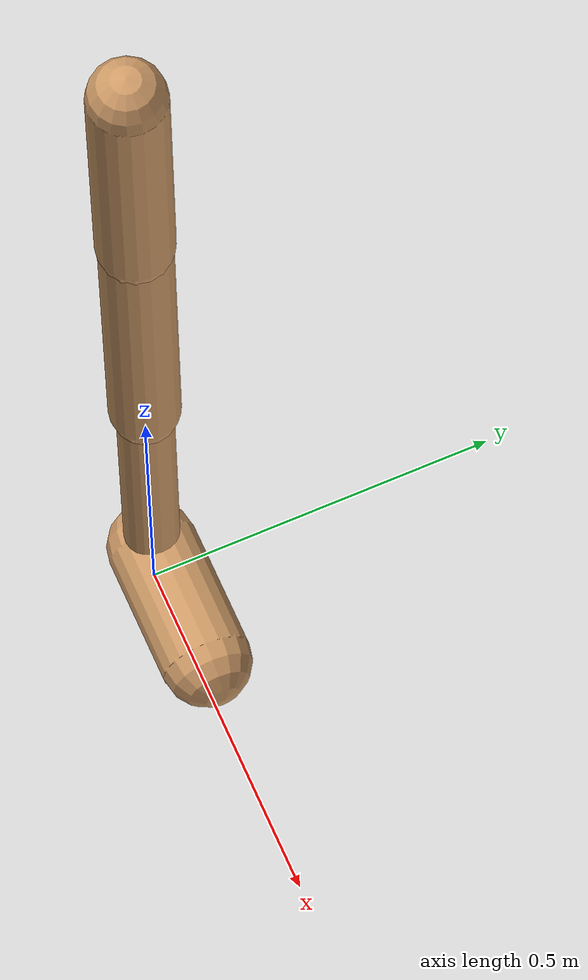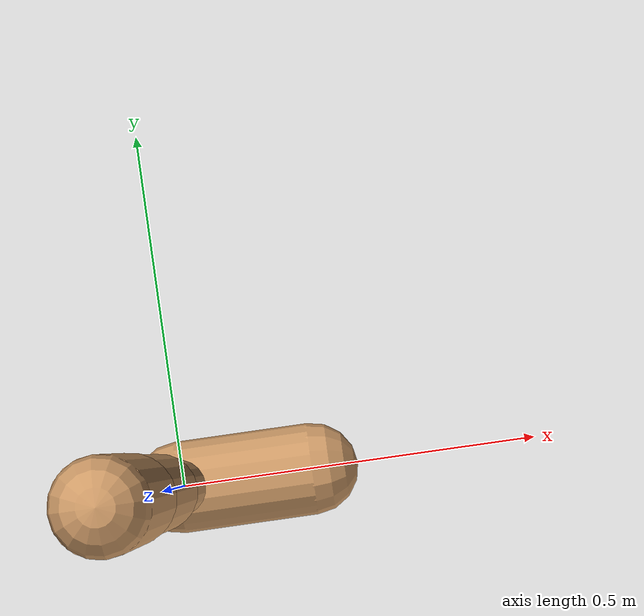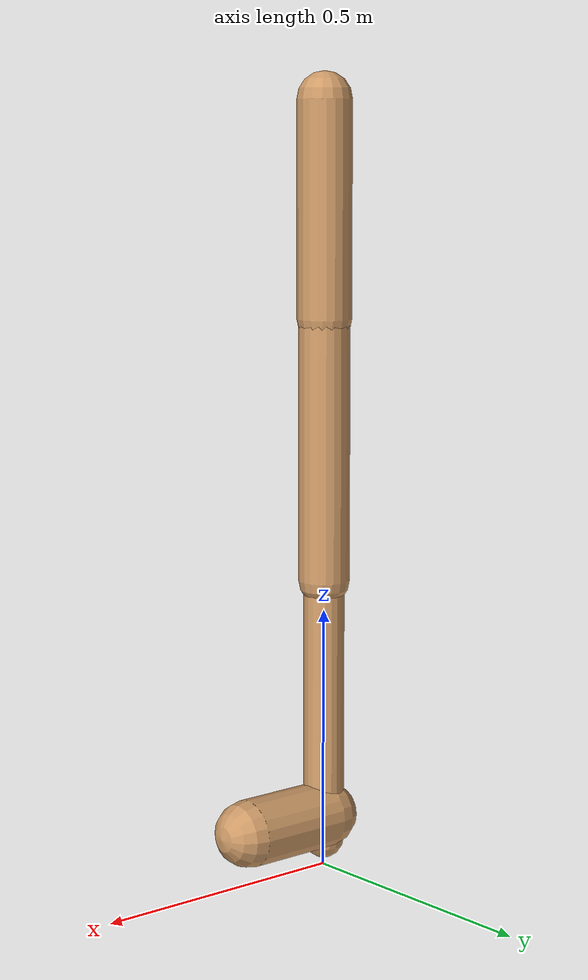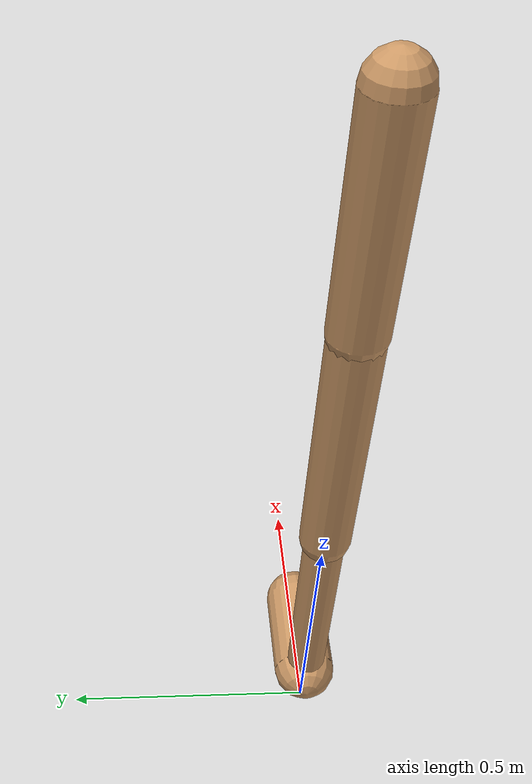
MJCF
<mujoco model="walker2d">
  <compiler angle="degree" coordinate="global" inertiafromgeom="true" />
  <default>
    <joint armature="0.01" damping=".1" limited="true" />
    <geom conaffinity="0" condim="3" contype="1" density="1000" friction="0.8 .1 .1" rgba="0.8 0.6 .4 1" />
  </default>
  <option integrator="RK4" timestep="0.002" />
  <worldbody>

    <body name="torso" pos="0 0 0.08887382505283577">
      <joint armature="0" axis="1 0 0" damping="0" limited="false" name="ignorex" pos="0 0 0" stiffness="0" type="slide" />
      <joint armature="0" axis="0 0 1" damping="0" limited="false" name="ignorez" pos="0 0 0" ref="1.25" stiffness="0" type="slide" />
      <joint armature="0" axis="0 1 0" damping="0" limited="false" name="ignorey" pos="0 0 0" stiffness="0" type="hinge" />
      <geom fromto="0 0 1.45 0 0 1.05" name="torso_geom" size="0.051141246702459925" type="capsule" />
      <body name="thigh">
        <joint axis="0 -1 0" name="thigh_joint" pos="0 0 1.05" range="-150 0" type="hinge" />
        <geom fromto="0.0 0.0 1.05 0.0 0.0 0.5579018723433936" name="thigh_geom" size="0.048246903098605035" type="capsule" />
        <body name="leg" pos="0.0 0.0 -0.042098127656606366">
          <joint axis="0 -1 0" name="leg_joint" pos="0 0 0.6" range="-150 0" type="hinge" />
          <geom fromto="0.0 0.0 0.6 0.0 0.0 0.05322430260377066" name="leg_geom" size="0.038597522478884025" type="capsule" />
          <body name="foot" pos="0.0 0.0 -0.046775697396229346">
            <joint axis="0 -1 0" name="foot_joint" pos="0 0 0.1" range="-45 45" type="hinge" />
            <geom fromto="0.0 0.0 0.1 0.18490224052042045 0.0 0.1" name="foot_geom" size="0.06332917597369332" type="capsule" />
          </body>
        </body>
      </body>

      <body name="thigh_left">
        <joint axis="0 -1 0" name="thigh_left_joint" pos="0 0 1.05" range="-150 0" type="hinge" />
        <geom fromto="0.0 0.0 1.05 0.0 0.0 0.5579018723433936" name="thigh_left_geom" rgba=".7 .3 .6 1" size="0.048246903098605035" type="capsule" />
        <body name="leg_left" pos="0.0 0.0 -0.042098127656606366">
          <joint axis="0 -1 0" name="leg_left_joint" pos="0 0 0.6" range="-150 0" type="hinge" />
          <geom fromto="0.0 0.0 0.6 0.0 0.0 0.05322430260377066" name="leg_left_geom" rgba=".7 .3 .6 1" size="0.038597522478884025" type="capsule" />
          <body name="foot_left" pos="0.0 0.0 -0.046775697396229346">
            <joint axis="0 -1 0" name="foot_left_joint" pos="0 0 0.1" range="-45 45" type="hinge" />
            <geom fromto="0.0 0.0 0.1 0.18490224052042045 0.0 0.1" name="foot_left_geom" rgba=".7 .3 .6 1" size="0.06332917597369332" type="capsule" />
          </body>
        </body>
      </body>
    </body>
  </worldbody>
  <actuator>

    <motor ctrllimited="true" ctrlrange="-1.0 1.0" gear="100" joint="thigh_joint" />
    <motor ctrllimited="true" ctrlrange="-1.0 1.0" gear="100" joint="leg_joint" />
    <motor ctrllimited="true" ctrlrange="-1.0 1.0" gear="100" joint="foot_joint" />
    <motor ctrllimited="true" ctrlrange="-1.0 1.0" gear="100" joint="thigh_left_joint" />
    <motor ctrllimited="true" ctrlrange="-1.0 1.0" gear="100" joint="leg_left_joint" />
    <motor ctrllimited="true" ctrlrange="-1.0 1.0" gear="100" joint="foot_left_joint" />

  </actuator>
</mujoco>
